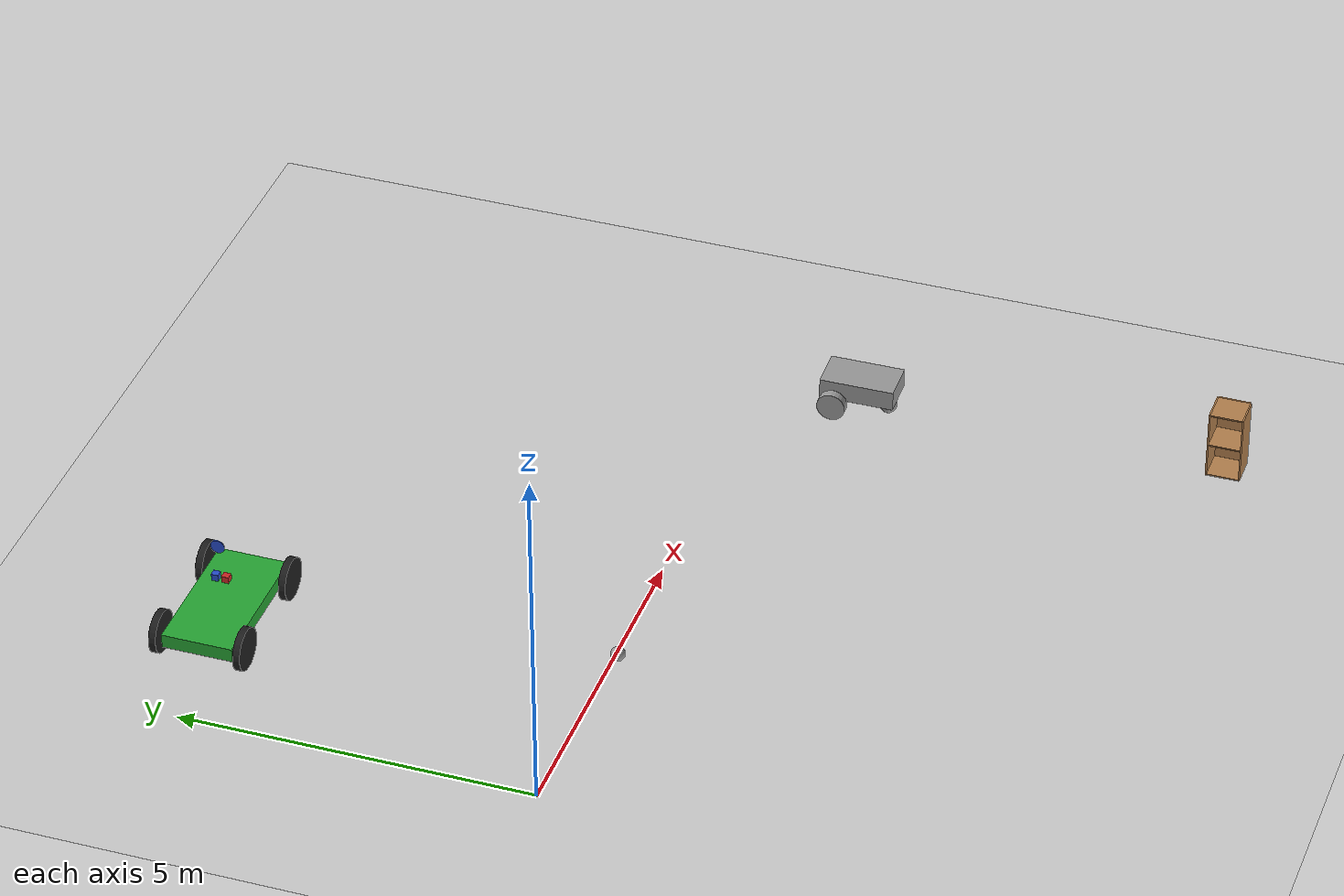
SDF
<sdf version="1.6">
 <world name="default">
  <model name="ground_plane">
   <static>1</static>
   <link name="link">
    <collision name="collision">
     <geometry><plane><normal>0 0 1</normal><size>100 100</size></plane></geometry>
     <surface>
      <contact><collide_bitmask>65535</collide_bitmask></contact>
      <friction><ode><mu>100</mu><mu2>50</mu2></ode></friction>
     </surface>
    </collision>
    <visual name="visual">
     <cast_shadows>0</cast_shadows>
     <geometry><plane><normal>0 0 1</normal><size>100 100</size></plane></geometry>
     <material>
      <script><uri>file://media/materials/scripts/gazebo.material</uri><name>Gazebo/Grey</name></script>
     </material>
    </visual>
   </link>
  </model>
  <model name="cart_0">
   <link name="link_0">
    <pose>0.000334 -0.065586 0.044669 0 -0 0</pose>
    <inertial>
     <mass>0.183478</mass>
     <inertia>
      <ixx>0.0186131</ixx>
      <ixy>0</ixy>
      <ixz>0</ixz>
      <iyy>0.00678768</iyy>
      <iyz>0</iyz>
      <izz>0.0228966</izz>
     </inertia>
    </inertial>
    <visual name="visual">
     <pose>0 0 0.2 0 -0 0</pose>
     <geometry><box><size>0.6017 1.06558 0.286166</size></box></geometry>
     <material>
      <lighting>1</lighting>
      <script><uri>file://media/materials/scripts/gazebo.material</uri><name>Gazebo/Grey</name></script>
      <shader type="pixel"><normal_map>__default__</normal_map></shader>
      <ambient>0.3 0.3 0.3 1</ambient>
      <diffuse>0.7 0.7 0.7 1</diffuse>
      <specular>0.01 0.01 0.01 1</specular>
      <emissive>0 0 0 1</emissive>
     </material>
    </visual>
    <collision name="collision">
     <pose>0 0 0.2 0 -0 0</pose>
     <geometry><box><size>0.6017 1.06558 0.286166</size></box></geometry>
     <surface>
      <friction>
       <ode><mu>1</mu><mu2>1</mu2><fdir1>0 0 0</fdir1><slip1>0</slip1><slip2>0</slip2></ode>
       <torsional>
        <coefficient>1</coefficient>
        <patch_radius>0</patch_radius>
        <surface_radius>0</surface_radius>
        <use_patch_radius>1</use_patch_radius>
        <ode><slip>0</slip></ode>
       </torsional>
      </friction>
      <bounce><restitution_coefficient>0</restitution_coefficient><threshold>1e+06</threshold></bounce>
      <contact>
       <collide_without_contact>0</collide_without_contact>
       <collide_without_contact_bitmask>1</collide_without_contact_bitmask>
       <collide_bitmask>1</collide_bitmask>
       <ode>
        <soft_cfm>0</soft_cfm>
        <soft_erp>0.2</soft_erp>
        <kp>1e+13</kp>
        <kd>1</kd>
        <max_vel>0.01</max_vel>
        <min_depth>0</min_depth>
       </ode>
       <bullet>
        <split_impulse>1</split_impulse>
        <split_impulse_penetration_threshold>-0.01</split_impulse_penetration_threshold>
        <soft_cfm>0</soft_cfm>
        <soft_erp>0.2</soft_erp>
        <kp>1e+13</kp>
        <kd>1</kd>
       </bullet>
      </contact>
     </surface>
    </collision>
   </link>
   <link name="link_1">
    <pose>-0.001 -0.462788 -0.129729 0 -0 0</pose>
    <inertial>
     <mass>1.886</mass>
     <inertia>
      <ixx>0.0115145</ixx>
      <ixy>0</ixy>
      <ixz>0</ixz>
      <iyy>0.0115145</iyy>
      <iyz>0</iyz>
      <izz>0.0115145</izz>
     </inertia>
     <pose>0 0 0.024704 0 -0 0</pose>
    </inertial>
    <visual name="visual">
     <pose>0 0 0.1 0 -0 0</pose>
     <geometry><sphere><radius>0.123544</radius></sphere></geometry>
     <material>
      <lighting>1</lighting>
      <script><uri>file://media/materials/scripts/gazebo.material</uri><name>Gazebo/Grey</name></script>
      <shader type="pixel"><normal_map>__default__</normal_map></shader>
      <ambient>0.3 0.3 0.3 1</ambient>
      <diffuse>0.7 0.7 0.7 1</diffuse>
      <specular>0.01 0.01 0.01 1</specular>
      <emissive>0 0 0 1</emissive>
     </material>
    </visual>
    <collision name="collision">
     <pose>0 0 0.1 0 -0 0</pose>
     <geometry><sphere><radius>0.123544</radius></sphere></geometry>
     <surface>
      <friction>
       <ode><mu>1</mu><mu2>1</mu2><fdir1>0 0 0</fdir1><slip1>0</slip1><slip2>0</slip2></ode>
       <torsional>
        <coefficient>1</coefficient>
        <patch_radius>0</patch_radius>
        <surface_radius>0</surface_radius>
        <use_patch_radius>1</use_patch_radius>
        <ode><slip>0</slip></ode>
       </torsional>
      </friction>
      <bounce><restitution_coefficient>0</restitution_coefficient><threshold>1e+06</threshold></bounce>
      <contact>
       <collide_without_contact>0</collide_without_contact>
       <collide_without_contact_bitmask>1</collide_without_contact_bitmask>
       <collide_bitmask>1</collide_bitmask>
       <ode>
        <soft_cfm>0</soft_cfm>
        <soft_erp>0.2</soft_erp>
        <kp>1e+13</kp>
        <kd>1</kd>
        <max_vel>0.01</max_vel>
        <min_depth>0</min_depth>
       </ode>
       <bullet>
        <split_impulse>1</split_impulse>
        <split_impulse_penetration_threshold>-0.01</split_impulse_penetration_threshold>
        <soft_cfm>0</soft_cfm>
        <soft_erp>0.2</soft_erp>
        <kp>1e+13</kp>
        <kd>1</kd>
       </bullet>
      </contact>
     </surface>
    </collision>
   </link>
   <link name="link_2">
    <pose>0.368986 0.26419 0.04253 3.14159 1.55999 3.14159</pose>
    <inertial>
     <mass>0.0216399</mass>
     <inertia>
      <ixx>0.000254029</ixx>
      <ixy>0</ixy>
      <ixz>0</ixz>
      <iyy>0.000254029</iyy>
      <iyz>0</iyz>
      <izz>0.000445951</izz>
     </inertia>
    </inertial>
    <visual name="visual">
     <geometry><cylinder><radius>0.203016</radius><length>0.131225</length></cylinder></geometry>
     <material>
      <lighting>1</lighting>
      <script><uri>file://media/materials/scripts/gazebo.material</uri><name>Gazebo/Grey</name></script>
      <shader type="pixel"><normal_map>__default__</normal_map></shader>
      <ambient>0.3 0.3 0.3 1</ambient>
      <diffuse>0.7 0.7 0.7 1</diffuse>
      <specular>0.01 0.01 0.01 1</specular>
      <emissive>0 0 0 1</emissive>
     </material>
    </visual>
    <collision name="collision">
     <geometry><cylinder><radius>0.203016</radius><length>0.131225</length></cylinder></geometry>
     <surface>
      <friction>
       <ode><mu>1</mu><mu2>1</mu2><fdir1>0 0 0</fdir1><slip1>0</slip1><slip2>0</slip2></ode>
       <torsional>
        <coefficient>1</coefficient>
        <patch_radius>0</patch_radius>
        <surface_radius>0</surface_radius>
        <use_patch_radius>1</use_patch_radius>
        <ode><slip>0</slip></ode>
       </torsional>
      </friction>
      <bounce><restitution_coefficient>0</restitution_coefficient><threshold>1e+06</threshold></bounce>
      <contact>
       <collide_without_contact>0</collide_without_contact>
       <collide_without_contact_bitmask>1</collide_without_contact_bitmask>
       <collide_bitmask>1</collide_bitmask>
       <ode>
        <soft_cfm>0</soft_cfm>
        <soft_erp>0.2</soft_erp>
        <kp>1e+13</kp>
        <kd>1</kd>
        <max_vel>0.01</max_vel>
        <min_depth>0</min_depth>
       </ode>
       <bullet>
        <split_impulse>1</split_impulse>
        <split_impulse_penetration_threshold>-0.01</split_impulse_penetration_threshold>
        <soft_cfm>0</soft_cfm>
        <soft_erp>0.2</soft_erp>
        <kp>1e+13</kp>
        <kd>1</kd>
       </bullet>
      </contact>
     </surface>
    </collision>
   </link>
   <link name="link_2_clone">
    <pose>-0.368319 0.26419 0.04253 3.14159 1.55999 3.14159</pose>
    <inertial>
     <mass>0.0216399</mass>
     <inertia>
      <ixx>0.000254029</ixx>
      <ixy>0</ixy>
      <ixz>0</ixz>
      <iyy>0.000254029</iyy>
      <iyz>0</iyz>
      <izz>0.000445951</izz>
     </inertia>
    </inertial>
    <visual name="visual">
     <geometry><cylinder><radius>0.203016</radius><length>0.131225</length></cylinder></geometry>
     <material>
      <lighting>1</lighting>
      <script><uri>file://media/materials/scripts/gazebo.material</uri><name>Gazebo/Grey</name></script>
      <shader type="pixel"><normal_map>__default__</normal_map></shader>
      <ambient>0.3 0.3 0.3 1</ambient>
      <diffuse>0.7 0.7 0.7 1</diffuse>
      <specular>0.01 0.01 0.01 1</specular>
      <emissive>0 0 0 1</emissive>
     </material>
    </visual>
    <collision name="collision">
     <geometry><cylinder><radius>0.203016</radius><length>0.131225</length></cylinder></geometry>
     <surface>
      <friction>
       <ode><mu>1</mu><mu2>1</mu2><fdir1>0 0 0</fdir1><slip1>0</slip1><slip2>0</slip2></ode>
       <torsional>
        <coefficient>1</coefficient>
        <patch_radius>0</patch_radius>
        <surface_radius>0</surface_radius>
        <use_patch_radius>1</use_patch_radius>
        <ode><slip>0</slip></ode>
       </torsional>
      </friction>
      <bounce><restitution_coefficient>0</restitution_coefficient><threshold>1e+06</threshold></bounce>
      <contact>
       <collide_without_contact>0</collide_without_contact>
       <collide_without_contact_bitmask>1</collide_without_contact_bitmask>
       <collide_bitmask>1</collide_bitmask>
       <ode>
        <soft_cfm>0</soft_cfm>
        <soft_erp>0.2</soft_erp>
        <kp>1e+13</kp>
        <kd>1</kd>
        <max_vel>0.01</max_vel>
        <min_depth>0</min_depth>
       </ode>
       <bullet>
        <split_impulse>1</split_impulse>
        <split_impulse_penetration_threshold>-0.01</split_impulse_penetration_threshold>
        <soft_cfm>0</soft_cfm>
        <soft_erp>0.2</soft_erp>
        <kp>1e+13</kp>
        <kd>1</kd>
       </bullet>
      </contact>
     </surface>
    </collision>
   </link>
   <joint name="link_0_JOINT_0" type="revolute">
    <parent>link_0</parent>
    <child>link_2</child>
    <axis>
     <xyz>0 0 1</xyz>
     <use_parent_model_frame>0</use_parent_model_frame>
     <limit>
      <lower>-1.79769e+308</lower>
      <upper>1.79769e+308</upper>
      <effort>-1</effort>
      <velocity>-1</velocity>
     </limit>
     <dynamics>
      <spring_reference>0</spring_reference>
      <spring_stiffness>0</spring_stiffness>
      <damping>0</damping>
     </dynamics>
    </axis>
    <physics>
     <ode><limit><cfm>0</cfm><erp>0.2</erp></limit><suspension><cfm>0</cfm><erp>0.2</erp></suspension></ode>
    </physics>
   </joint>
   <joint name="link_0_JOINT_1" type="revolute">
    <parent>link_0</parent>
    <child>link_2_clone</child>
    <axis>
     <xyz>0 0 1</xyz>
     <use_parent_model_frame>0</use_parent_model_frame>
     <limit>
      <lower>-1.79769e+308</lower>
      <upper>1.79769e+308</upper>
      <effort>-1</effort>
      <velocity>-1</velocity>
     </limit>
     <dynamics>
      <spring_reference>0</spring_reference>
      <spring_stiffness>0</spring_stiffness>
      <damping>0</damping>
     </dynamics>
    </axis>
    <physics>
     <ode><limit><cfm>0</cfm><erp>0.2</erp></limit><suspension><cfm>0</cfm><erp>0.2</erp></suspension></ode>
    </physics>
   </joint>
   <joint name="link_0_JOINT_2" type="ball">
    <parent>link_0</parent>
    <child>link_1</child>
    <physics>
     <ode><limit><cfm>0</cfm><erp>0.2</erp></limit><suspension><cfm>0</cfm><erp>0.2</erp></suspension></ode>
    </physics>
   </joint>
   <static>0</static>
   <pose>9.48222 -1.35295 0.158307 0.010895 -0 0.024116</pose>
  </model>
  <model name="cabinet">
   <static>1</static>
   <link name="cabinet_bottom_plate">
    <inertial>
     <pose>0 0 -1 0 -0 0</pose>
     <inertia><ixx>2.05</ixx><ixy>0</ixy><ixz>0</ixz><iyy>2.05</iyy><iyz>0</iyz><izz>2.05</izz></inertia>
     <mass>25</mass>
    </inertial>
    <collision name="cabinet_bottom_plate_geom">
     <pose>0 0 0.01 0 -0 0</pose>
     <geometry><box><size>0.45 0.45 0.02</size></box></geometry>
    </collision>
    <visual name="cabinet_bottom_plate_geom_visual">
     <pose>0 0 0.01 0 -0 0</pose>
     <geometry><box><size>0.45 0.45 0.02</size></box></geometry>
     <material>
      <script><uri>file://media/materials/scripts/gazebo.material</uri><name>Gazebo/Wood</name></script>
     </material>
    </visual>
    <collision name="cabinet_bottom_plate_geom_cabinet_back_plate">
     <pose>0.235 0 0.51 0 -0 0</pose>
     <geometry><box><size>0.02 0.45 1.02</size></box></geometry>
    </collision>
    <visual name="cabinet_bottom_plate_geom_cabinet_back_plate_visual">
     <pose>0.235 0 0.51 0 -0 0</pose>
     <geometry><box><size>0.02 0.45 1.02</size></box></geometry>
     <material>
      <script><uri>file://media/materials/scripts/gazebo.material</uri><name>Gazebo/Wood</name></script>
     </material>
    </visual>
    <collision name="cabinet_bottom_plate_geom_cabinet_left_plate">
     <pose>0 0.235 0.51 0 -0 0</pose>
     <geometry><box><size>0.45 0.02 1.02</size></box></geometry>
    </collision>
    <visual name="cabinet_bottom_plate_geom_cabinet_left_plate_visual">
     <pose>0 0.235 0.51 0 -0 0</pose>
     <geometry><box><size>0.45 0.02 1.02</size></box></geometry>
     <material>
      <script><uri>file://media/materials/scripts/gazebo.material</uri><name>Gazebo/Wood</name></script>
     </material>
    </visual>
    <collision name="cabinet_bottom_plate_geom_cabinet_middle_plate">
     <pose>0 0 0.51 0 -0 0</pose>
     <geometry><box><size>0.45 0.45 0.02</size></box></geometry>
    </collision>
    <visual name="cabinet_bottom_plate_geom_cabinet_middle_plate_visual">
     <pose>0 0 0.51 0 -0 0</pose>
     <geometry><box><size>0.45 0.45 0.02</size></box></geometry>
     <material>
      <script><uri>file://media/materials/scripts/gazebo.material</uri><name>Gazebo/Wood</name></script>
     </material>
    </visual>
    <collision name="cabinet_bottom_plate_geom_cabinet_right_plate">
     <pose>0 -0.235 0.51 0 -0 0</pose>
     <geometry><box><size>0.45 0.02 1.02</size></box></geometry>
    </collision>
    <visual name="cabinet_bottom_plate_geom_cabinet_right_plate_visual">
     <pose>0 -0.235 0.51 0 -0 0</pose>
     <geometry><box><size>0.45 0.02 1.02</size></box></geometry>
     <material>
      <script><uri>file://media/materials/scripts/gazebo.material</uri><name>Gazebo/Wood</name></script>
     </material>
    </visual>
    <collision name="cabinet_bottom_plate_geom_cabinet_top_plate">
     <pose>0 0 1.01 0 -0 0</pose>
     <geometry><box><size>0.45 0.45 0.02</size></box></geometry>
    </collision>
    <visual name="cabinet_bottom_plate_geom_cabinet_top_plate_visual">
     <pose>0 0 1.01 0 -0 0</pose>
     <geometry><box><size>0.45 0.45 0.02</size></box></geometry>
     <material>
      <script><uri>file://media/materials/scripts/gazebo.material</uri><name>Gazebo/Wood</name></script>
     </material>
    </visual>
   </link>
   <pose>9.68998 -6.65304 0 0 -0 0</pose>
  </model>
  <model name="car">
   <link name="chassis">
    <pose>0 0 0.3 0 -0 0</pose>
    <collision name="collision"><geometry><box><size>2 1 0.2</size></box></geometry></collision>
    <visual name="visual">
     <geometry><box><size>2 1 0.2</size></box></geometry>
     <material>
      <script><uri>file://media/materials/scripts/gazebo.material</uri><name>Gazebo/Green</name></script>
     </material>
    </visual>
    <inertial>
     <inertia><ixx>1</ixx><ixy>0</ixy><ixz>0</ixz><iyy>1</iyy><iyz>0</iyz><izz>1</izz></inertia>
     <mass>1</mass>
    </inertial>
   </link>
   <link name="front_left_wheel">
    <pose>0.8 0.6 0.3 -0 1.5707 1.5707</pose>
    <collision name="collision">
     <geometry><cylinder><radius>0.3</radius><length>0.1</length></cylinder></geometry>
    </collision>
    <visual name="visual">
     <geometry><cylinder><radius>0.3</radius><length>0.1</length></cylinder></geometry>
     <material>
      <script><uri>file://media/materials/scripts/gazebo.material</uri><name>Gazebo/Black</name></script>
     </material>
    </visual>
    <inertial>
     <inertia><ixx>1</ixx><ixy>0</ixy><ixz>0</ixz><iyy>1</iyy><iyz>0</iyz><izz>1</izz></inertia>
     <mass>1</mass>
    </inertial>
   </link>
   <link name="front_right_wheel">
    <pose>0.8 -0.6 0.3 -0 1.5707 1.5707</pose>
    <collision name="collision">
     <geometry><cylinder><radius>0.3</radius><length>0.1</length></cylinder></geometry>
    </collision>
    <visual name="visual">
     <geometry><cylinder><radius>0.3</radius><length>0.1</length></cylinder></geometry>
     <material>
      <script><uri>file://media/materials/scripts/gazebo.material</uri><name>Gazebo/Black</name></script>
     </material>
    </visual>
    <inertial>
     <inertia><ixx>1</ixx><ixy>0</ixy><ixz>0</ixz><iyy>1</iyy><iyz>0</iyz><izz>1</izz></inertia>
     <mass>1</mass>
    </inertial>
   </link>
   <link name="back_right_wheel">
    <pose>-0.8 -0.6 0.3 -0 1.5707 1.5707</pose>
    <collision name="collision">
     <geometry><cylinder><radius>0.3</radius><length>0.1</length></cylinder></geometry>
    </collision>
    <visual name="visual">
     <geometry><cylinder><radius>0.3</radius><length>0.1</length></cylinder></geometry>
     <material>
      <script><uri>file://media/materials/scripts/gazebo.material</uri><name>Gazebo/Black</name></script>
     </material>
    </visual>
    <inertial>
     <inertia><ixx>1</ixx><ixy>0</ixy><ixz>0</ixz><iyy>1</iyy><iyz>0</iyz><izz>1</izz></inertia>
     <mass>1</mass>
    </inertial>
   </link>
   <link name="back_left_wheel">
    <pose>-0.8 0.6 0.3 -0 1.5707 1.5707</pose>
    <collision name="collision">
     <geometry><cylinder><radius>0.3</radius><length>0.1</length></cylinder></geometry>
    </collision>
    <visual name="visual">
     <geometry><cylinder><radius>0.3</radius><length>0.1</length></cylinder></geometry>
     <material>
      <script><uri>file://media/materials/scripts/gazebo.material</uri><name>Gazebo/Black</name></script>
     </material>
    </visual>
    <inertial>
     <inertia><ixx>1</ixx><ixy>0</ixy><ixz>0</ixz><iyy>1</iyy><iyz>0</iyz><izz>1</izz></inertia>
     <mass>1</mass>
    </inertial>
   </link>
   <link name="gas_pedal">
    <pose>0.3 0.1 0.5 0 -0 0</pose>
    <collision name="collision"><geometry><box><size>0.1 0.1 0.1</size></box></geometry></collision>
    <visual name="visual">
     <geometry><box><size>0.1 0.1 0.1</size></box></geometry>
     <material>
      <script><uri>file://media/materials/scripts/gazebo.material</uri><name>Gazebo/Red</name></script>
     </material>
    </visual>
    <inertial>
     <inertia><ixx>1</ixx><ixy>0</ixy><ixz>0</ixz><iyy>1</iyy><iyz>0</iyz><izz>1</izz></inertia>
     <mass>1</mass>
    </inertial>
   </link>
   <link name="brake_pedal">
    <pose>0.3 0.25 0.5 0 -0 0</pose>
    <collision name="collision"><geometry><box><size>0.1 0.1 0.1</size></box></geometry></collision>
    <visual name="visual">
     <geometry><box><size>0.1 0.1 0.1</size></box></geometry>
     <material>
      <script><uri>file://media/materials/scripts/gazebo.material</uri><name>Gazebo/Blue</name></script>
     </material>
    </visual>
    <inertial>
     <inertia><ixx>1</ixx><ixy>0</ixy><ixz>0</ixz><iyy>1</iyy><iyz>0</iyz><izz>1</izz></inertia>
     <mass>1</mass>
    </inertial>
   </link>
   <link name="steering_wheel">
    <pose>0.3 0.2 1 0 1.5707 0</pose>
    <collision name="collision">
     <geometry><cylinder><radius>0.1</radius><length>0.01</length></cylinder></geometry>
    </collision>
    <visual name="visual">
     <geometry><cylinder><radius>0.1</radius><length>0.01</length></cylinder></geometry>
     <material>
      <script><uri>file://media/materials/scripts/gazebo.material</uri><name>Gazebo/Blue</name></script>
     </material>
    </visual>
    <inertial>
     <inertia><ixx>1</ixx><ixy>0</ixy><ixz>0</ixz><iyy>1</iyy><iyz>0</iyz><izz>1</izz></inertia>
     <mass>1</mass>
    </inertial>
   </link>
   <joint name="gas_joint" type="prismatic">
    <parent>chassis</parent>
    <child>gas_pedal</child>
    <axis>
     <xyz>1 0 0</xyz>
     <limit><lower>0</lower><upper>0.2</upper></limit>
     <use_parent_model_frame>1</use_parent_model_frame>
     <dynamics><spring_reference>0</spring_reference><spring_stiffness>0</spring_stiffness></dynamics>
    </axis>
   </joint>
   <joint name="brake_joint" type="prismatic">
    <parent>chassis</parent>
    <child>brake_pedal</child>
    <axis>
     <xyz>1 0 0</xyz>
     <limit><lower>0</lower><upper>0.2</upper></limit>
     <use_parent_model_frame>1</use_parent_model_frame>
     <dynamics><spring_reference>0</spring_reference><spring_stiffness>0</spring_stiffness></dynamics>
    </axis>
   </joint>
   <joint name="steering_joint" type="revolute">
    <parent>chassis</parent>
    <child>steering_wheel</child>
    <axis>
     <xyz>1 0 0</xyz>
     <limit><lower>-7.853</lower><upper>7.853</upper></limit>
     <use_parent_model_frame>1</use_parent_model_frame>
     <dynamics><spring_reference>0</spring_reference><spring_stiffness>0</spring_stiffness></dynamics>
    </axis>
   </joint>
   <joint name="front_left_joint" type="revolute2">
    <parent>chassis</parent>
    <child>front_left_wheel</child>
    <axis>
     <xyz>0 0 1</xyz>
     <limit><lower>8.69605e-06</lower><upper>8.69605e-06</upper></limit>
     <use_parent_model_frame>1</use_parent_model_frame>
     <dynamics><spring_reference>0</spring_reference><spring_stiffness>0</spring_stiffness></dynamics>
    </axis>
    <axis2>
     <xyz>0 1 0</xyz>
     <use_parent_model_frame>1</use_parent_model_frame>
     <dynamics><spring_reference>0</spring_reference><spring_stiffness>0</spring_stiffness></dynamics>
    </axis2>
    <physics><ode><limit><cfm>0</cfm><erp>0.9</erp></limit></ode></physics>
   </joint>
   <joint name="front_right_joint" type="revolute2">
    <parent>chassis</parent>
    <child>front_right_wheel</child>
    <axis>
     <xyz>0 0 1</xyz>
     <limit><lower>8.69605e-06</lower><upper>8.69605e-06</upper></limit>
     <use_parent_model_frame>1</use_parent_model_frame>
     <dynamics><spring_reference>0</spring_reference><spring_stiffness>0</spring_stiffness></dynamics>
    </axis>
    <axis2>
     <xyz>0 1 0</xyz>
     <use_parent_model_frame>1</use_parent_model_frame>
     <dynamics><spring_reference>0</spring_reference><spring_stiffness>0</spring_stiffness></dynamics>
    </axis2>
    <physics><ode><limit><cfm>0</cfm><erp>0.9</erp></limit></ode></physics>
   </joint>
   <joint name="back_right_joint" type="revolute2">
    <parent>chassis</parent>
    <child>back_right_wheel</child>
    <axis>
     <xyz>0 0 1</xyz>
     <limit><lower>0</lower><upper>0</upper></limit>
     <use_parent_model_frame>1</use_parent_model_frame>
     <dynamics><spring_reference>0</spring_reference><spring_stiffness>0</spring_stiffness></dynamics>
    </axis>
    <axis2>
     <xyz>0 1 0</xyz>
     <use_parent_model_frame>1</use_parent_model_frame>
     <dynamics><spring_reference>0</spring_reference><spring_stiffness>0</spring_stiffness></dynamics>
    </axis2>
    <physics><ode><limit><cfm>0</cfm><erp>0.9</erp></limit></ode></physics>
   </joint>
   <joint name="back_left_joint" type="revolute2">
    <parent>chassis</parent>
    <child>back_left_wheel</child>
    <axis>
     <xyz>0 0 1</xyz>
     <limit><lower>0</lower><upper>0</upper></limit>
     <use_parent_model_frame>1</use_parent_model_frame>
     <dynamics><spring_reference>0</spring_reference><spring_stiffness>0</spring_stiffness></dynamics>
    </axis>
    <axis2>
     <xyz>0 1 0</xyz>
     <use_parent_model_frame>1</use_parent_model_frame>
     <dynamics><spring_reference>0</spring_reference><spring_stiffness>0</spring_stiffness></dynamics>
    </axis2>
    <physics><ode><limit><cfm>0</cfm><erp>0.9</erp></limit></ode></physics>
   </joint>
   <plugin name="vehicle" filename="libVehiclePlugin.so">
    <front_left>front_left_joint</front_left>
    <front_right>front_right_joint</front_right>
    <back_left>back_left_joint</back_left>
    <back_right>back_right_joint</back_right>
    <gas>gas_joint</gas>
    <brake>brake_joint</brake>
    <steering>steering_joint</steering>
    <front_power>10</front_power>
    <rear_power>10</rear_power>
    <tire_angle_range>0.5</tire_angle_range>
    <max_speed>10</max_speed>
    <aero_load>0.1</aero_load>
   </plugin>
   <pose>2.0772 5.16204 -0.002615 -0.000273 0.000907 7.1e-05</pose>
  </model>
  <model name="my_ball">
   <link name="link_0">
    <inertial>
     <mass>1</mass>
     <inertia><ixx>0.1</ixx><ixy>0</ixy><ixz>0</ixz><iyy>0.1</iyy><iyz>0</iyz><izz>0.1</izz></inertia>
    </inertial>
    <visual name="visual">
     <geometry><sphere><radius>0.1</radius></sphere></geometry>
     <material>
      <lighting>1</lighting>
      <script><uri>file://media/materials/scripts/gazebo.material</uri><name>Gazebo/Grey</name></script>
      <shader type="pixel"><normal_map>__default__</normal_map></shader>
      <ambient>1 1 1 1</ambient>
      <diffuse>1 1 1 1</diffuse>
      <specular>1 1 1 1</specular>
      <emissive>1 1 1 1</emissive>
     </material>
    </visual>
    <collision name="collision">
     <geometry><sphere><radius>0.1</radius></sphere></geometry>
     <surface>
      <friction>
       <ode><mu>1</mu><mu2>1</mu2><fdir1>0 0 0</fdir1><slip1>0</slip1><slip2>0</slip2></ode>
       <torsional>
        <coefficient>1</coefficient>
        <patch_radius>0</patch_radius>
        <surface_radius>0</surface_radius>
        <use_patch_radius>1</use_patch_radius>
        <ode><slip>0</slip></ode>
       </torsional>
      </friction>
      <bounce><restitution_coefficient>0</restitution_coefficient><threshold>1e+06</threshold></bounce>
      <contact>
       <collide_without_contact>0</collide_without_contact>
       <collide_without_contact_bitmask>1</collide_without_contact_bitmask>
       <collide_bitmask>1</collide_bitmask>
       <ode>
        <soft_cfm>0</soft_cfm>
        <soft_erp>0.2</soft_erp>
        <kp>1e+13</kp>
        <kd>1</kd>
        <max_vel>0.01</max_vel>
        <min_depth>0</min_depth>
       </ode>
       <bullet>
        <split_impulse>1</split_impulse>
        <split_impulse_penetration_threshold>-0.01</split_impulse_penetration_threshold>
        <soft_cfm>0</soft_cfm>
        <soft_erp>0.2</soft_erp>
        <kp>1e+13</kp>
        <kd>1</kd>
       </bullet>
      </contact>
     </surface>
    </collision>
   </link>
   <static>0</static>
   <pose>2.98691 -0.065546 0.1 0 -0 0</pose>
  </model>
 </world>
</sdf>
